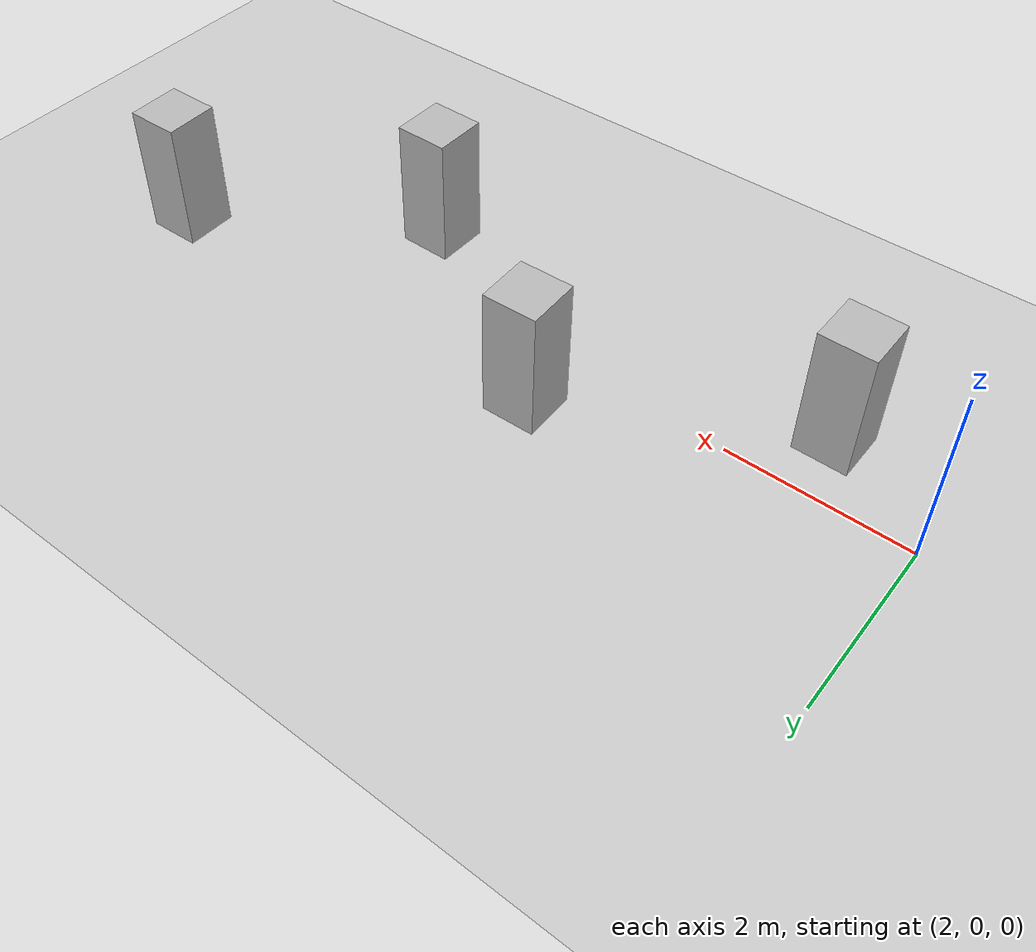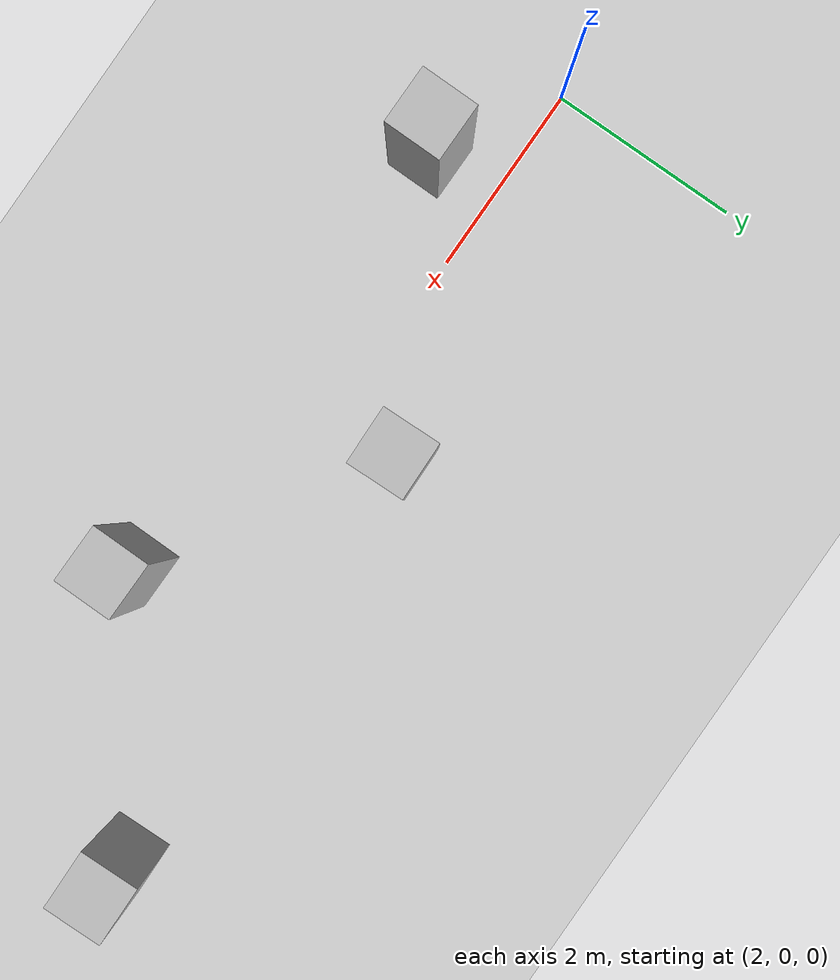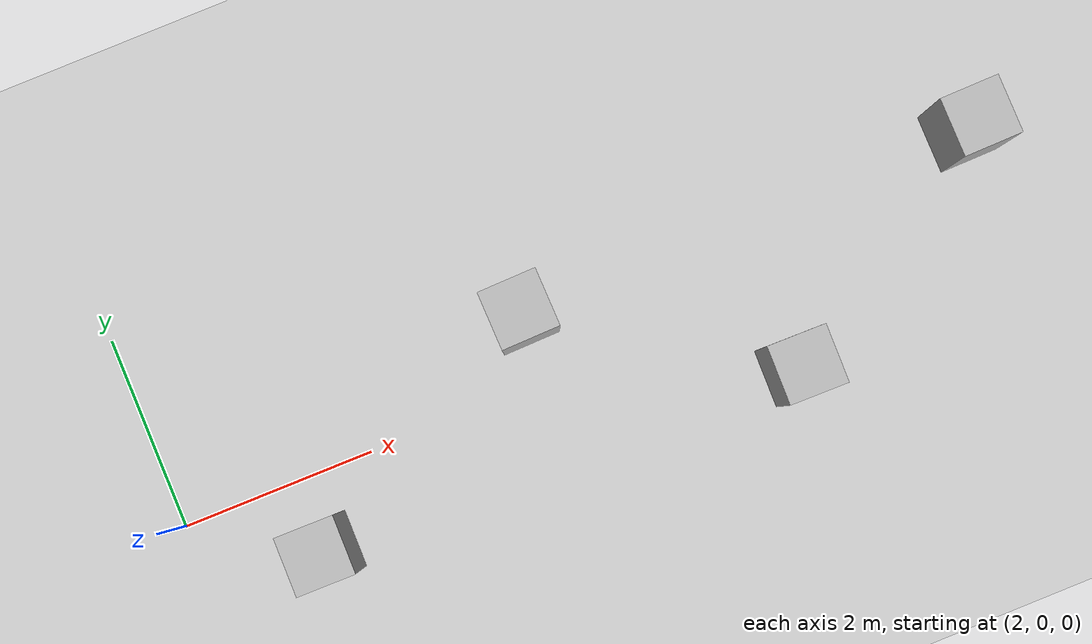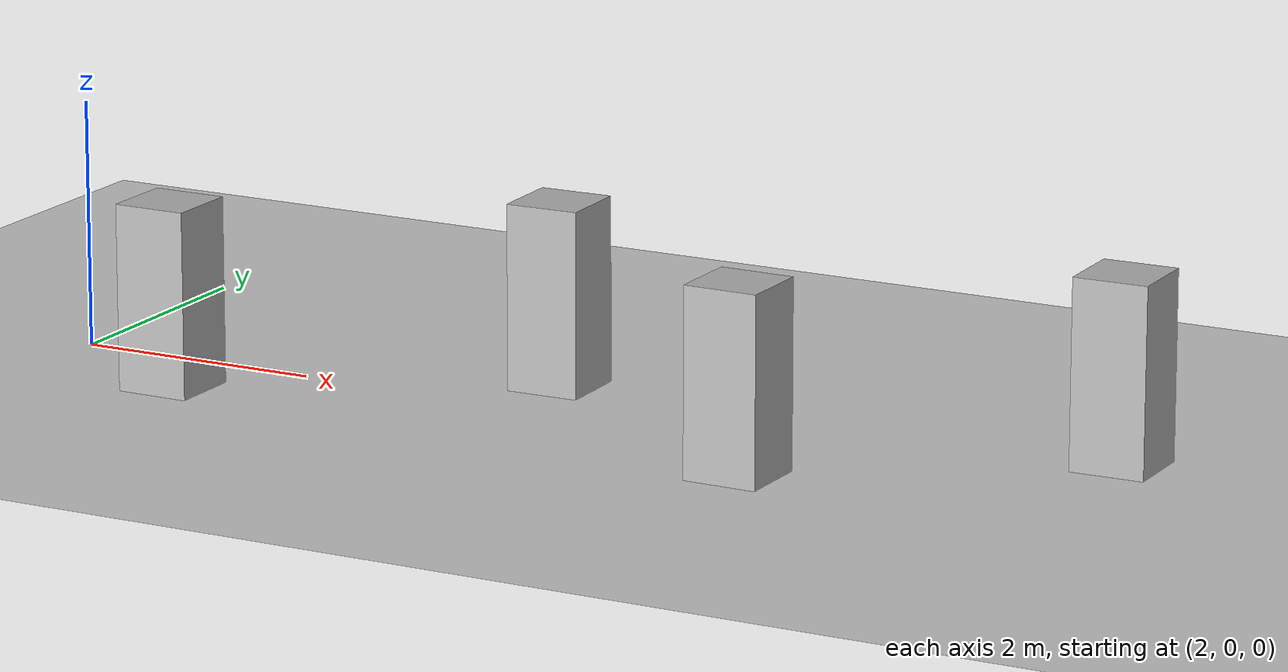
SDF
<?xml version="1.0"?>
<sdf version="1.6">
  <world name="v2-04g-p2-q1-support-static-support-s5344">
    <gravity>0 0 -9.81</gravity>
    <physics name="v2_deterministic" type="ode">
      <max_step_size>0.002</max_step_size>
      <real_time_update_rate>500</real_time_update_rate>
    </physics>
    <include>
      <uri>model://sun</uri>
    </include>
    <include>
      <uri>model://ground_plane</uri>
    </include>
    <model name="pillar-1">
      <static>true</static>
      <pose>3.226528135 -0.739081356 0.750000000 0 0 -0.005991636</pose>
      <link name="link">
        <collision name="collision">
          <geometry>
            <box>
              <size>0.600000 0.600000 1.500000</size>
            </box>
          </geometry>
        </collision>
        <visual name="visual">
          <geometry>
            <box>
              <size>0.600000 0.600000 1.500000</size>
            </box>
          </geometry>
        </visual>
      </link>
    </model>
    <model name="pillar-2">
      <static>true</static>
      <pose>5.885544483 0.701345644 0.750000000 0 0 0.023320633</pose>
      <link name="link">
        <collision name="collision">
          <geometry>
            <box>
              <size>0.600000 0.600000 1.500000</size>
            </box>
          </geometry>
        </collision>
        <visual name="visual">
          <geometry>
            <box>
              <size>0.600000 0.600000 1.500000</size>
            </box>
          </geometry>
        </visual>
      </link>
    </model>
    <model name="pillar-3">
      <static>true</static>
      <pose>8.225747697 -0.812024807 0.750000000 0 0 -0.011958021</pose>
      <link name="link">
        <collision name="collision">
          <geometry>
            <box>
              <size>0.600000 0.600000 1.500000</size>
            </box>
          </geometry>
        </collision>
        <visual name="visual">
          <geometry>
            <box>
              <size>0.600000 0.600000 1.500000</size>
            </box>
          </geometry>
        </visual>
      </link>
    </model>
    <model name="pillar-4">
      <static>true</static>
      <pose>10.645900234 0.755844145 0.750000000 0 0 0.017105156</pose>
      <link name="link">
        <collision name="collision">
          <geometry>
            <box>
              <size>0.600000 0.600000 1.500000</size>
            </box>
          </geometry>
        </collision>
        <visual name="visual">
          <geometry>
            <box>
              <size>0.600000 0.600000 1.500000</size>
            </box>
          </geometry>
        </visual>
      </link>
    </model>
  </world>
</sdf>
